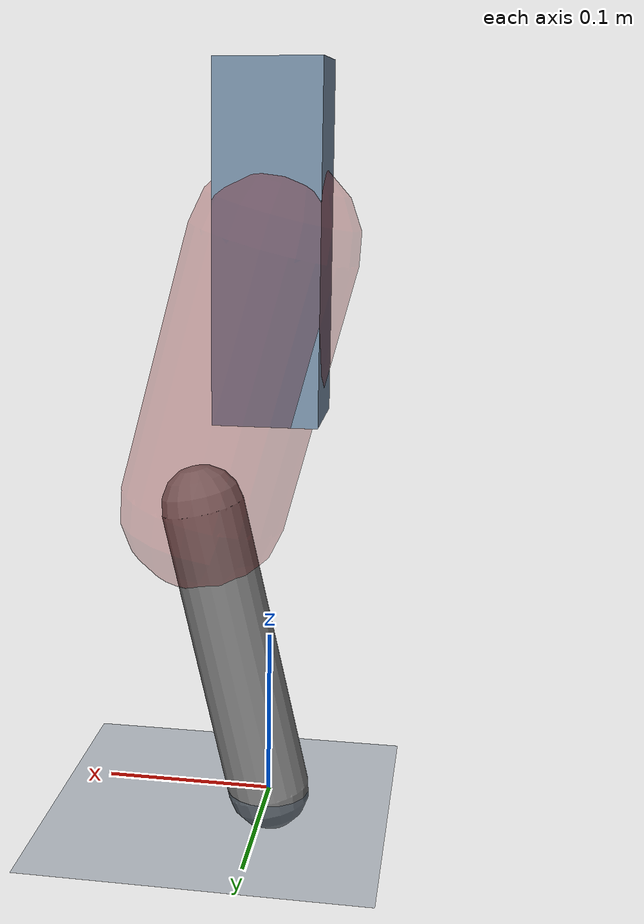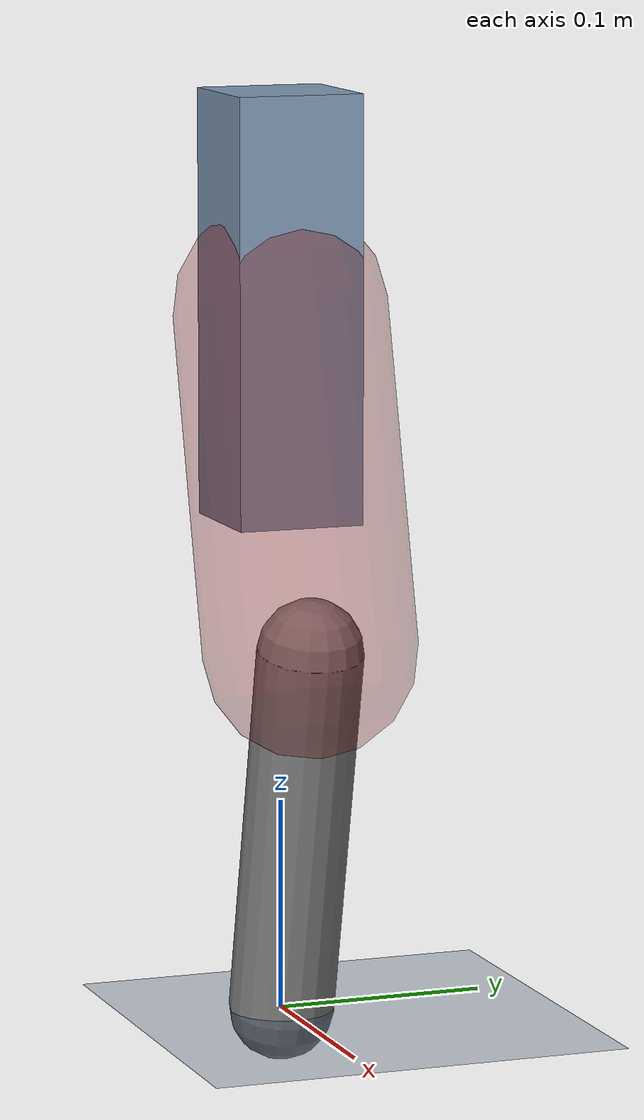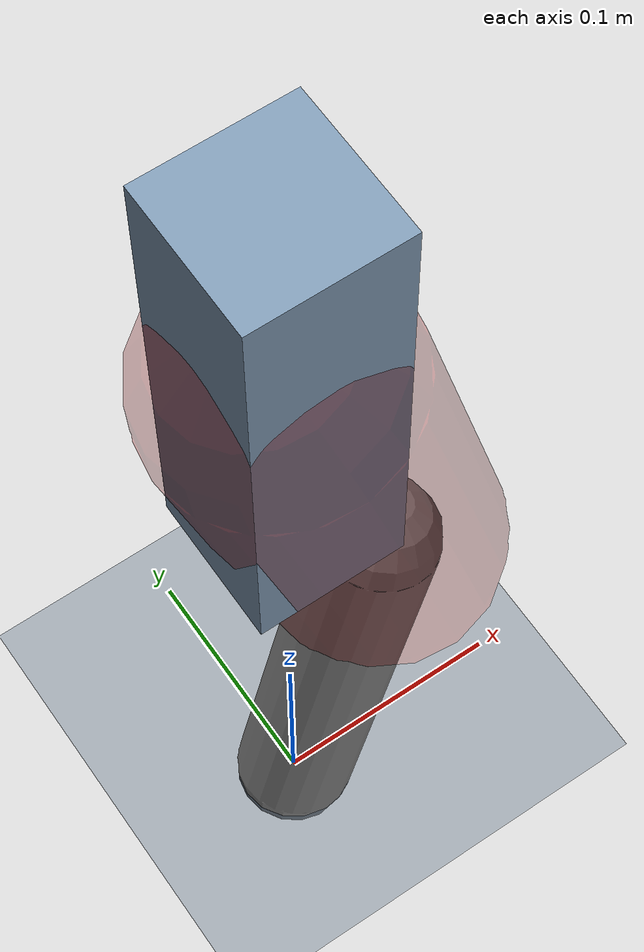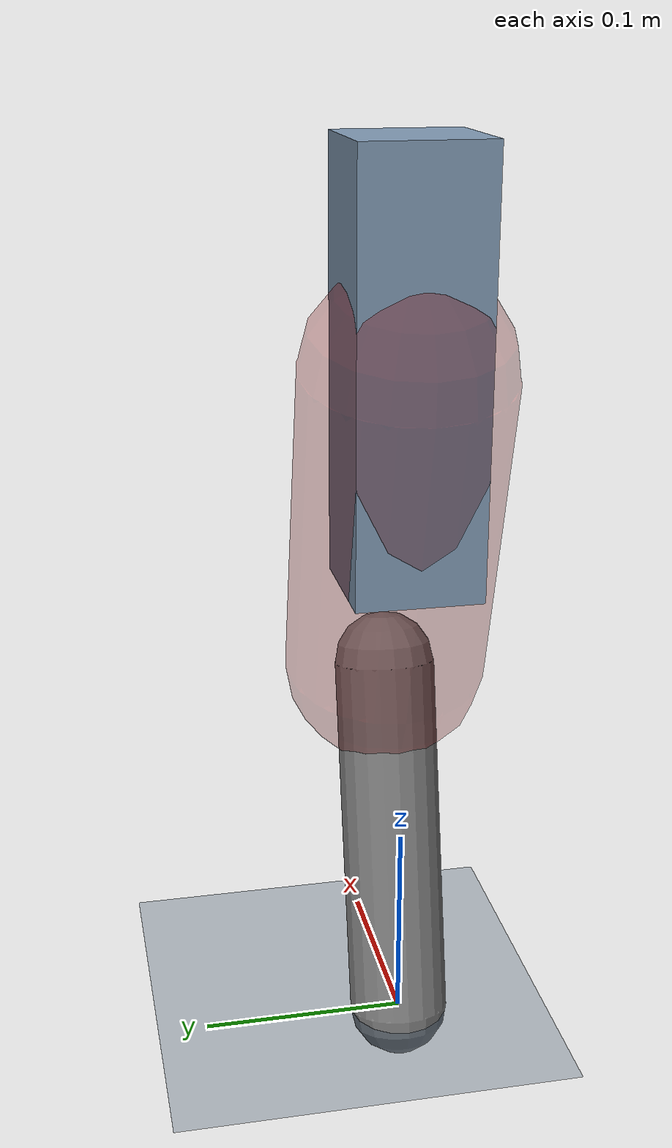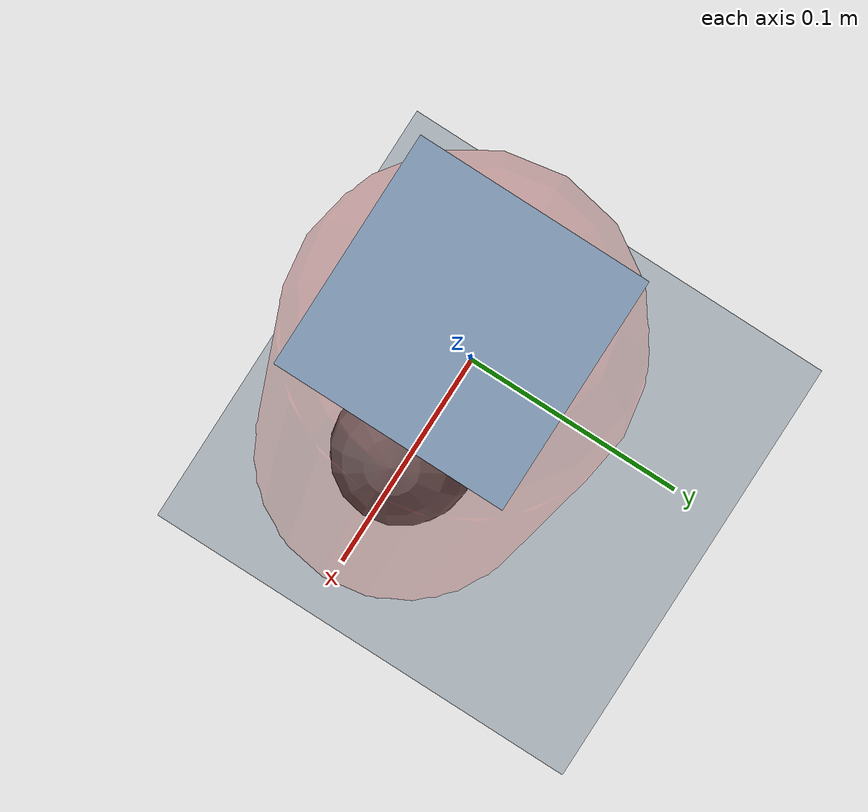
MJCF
<mujoco model="Hopper2D">
	<compiler inertiafromgeom="true" angle="radian" />
	<option timestep="0.001" integrator="implicit" cone="elliptic" solver="Newton" tolerance="1e-10" />

	<default>
		<geom contype="1" conaffinity="1" condim="3" friction="2 0.005 0.0001" solref="0.005 1" />
		<joint limited="true" damping="0.1" />
	</default>

	<asset>
		<texture name="skybox" type="skybox" builtin="gradient" rgb1=".4 .6 .8" rgb2="0 0 0" width="800" height="800" />
		<texture name="grid" type="2d" builtin="checker" rgb1=".1 .2 .3" rgb2=".2 .3 .4" width="300" height="300" mark="edge" markrgb=".2 .3 .4" />
		<material name="ground" texture="grid" texrepeat="1 1" texuniform="true" reflectance="0.1" />
		<material name="leg" rgba="0.5 0.6 0.7 1" />
	</asset>

	<worldbody>

		<geom name="floor" type="plane" size="5 5 0.25" material="ground" />

		<light directional="false" diffuse="0.8 0.8 0.8" specular="0.3 0.3 0.3" pos="0 0 2" dir="0 0 -1" />
		<light mode="targetbodycom" target="base" directional="false" diffuse="0.8 0.8 0.8" specular="0.3 0.3 0.3" pos="0 0 2" dir="0 0 -1" />

		<camera name="fixed" pos="0 -2 1" xyaxes="1 0 0 0 0 1" />
		<camera name="tracking" mode="trackcom" pos="0 -3 1" />

		<body name="root" pos="0 0 0.3346022709861464">
			<joint name="slide_x" type="slide" axis="1 0 0" range="-100 100" />
			<joint name="slide_z" type="slide" axis="0 0 1" range="0 10" />

			<body name="base" pos="0 0 0">
				<geom name="torso" type="box" size="0.03 0.03 0.1" mass="1.681" material="leg" />

				<body name="link1" pos="0 0 0" euler="0 1.312778663397609 0">
					<joint type="hinge" axis="0 -1 0" pos="0 0 0" name="hinge1" limited="true" range="-3.14 3.14" stiffness="0" damping="0.1" />
					<geom name="thigh" type="capsule" fromto="0 0 0 0.1611314190225971 0 0" size="0.05" rgba="0.5 0 0 0.3" mass="0.6350154056542331" />

					<body name="link2" pos="0.1611314190225971 0 0" euler="0 0.4840324934450879 0">
						<joint type="hinge" axis="0 -1 0" pos="0 0 0" name="hinge2" limited="true" range="-3.14 3.14" stiffness="0" damping="0.1" />
						<geom name="shank" type="capsule" fromto="0 0 0 0.18347085196354934 0 0" size="0.025" mass="0.3868766815708395" />

					</body>
				</body>
			</body>
		</body>
	</worldbody>

	<actuator>
		<motor name="torque1" joint="hinge1" ctrlrange="-67.1855187816328 67.1855187816328" ctrllimited="true" gear="1" />
		<motor name="torque2" joint="hinge2" ctrlrange="-14.72325250660575 14.72325250660575" ctrllimited="true" gear="1" />
	</actuator>
</mujoco>
